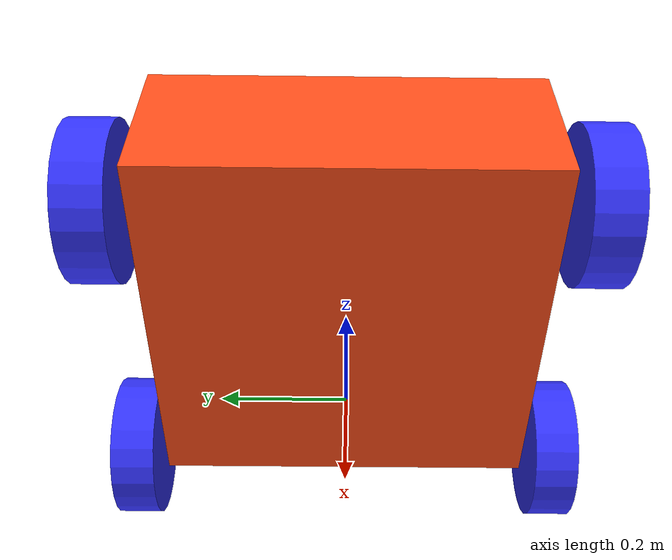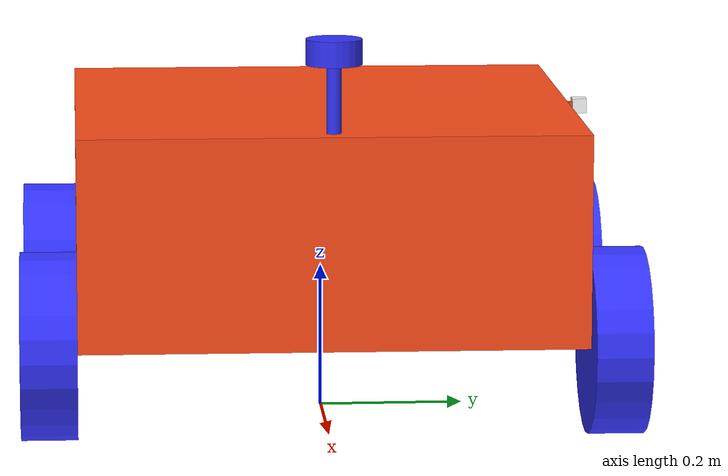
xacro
<?xml version="1.0"?>
<robot name='palmvision' xmlns:xacro="http://www.ros.org/wiki/xacro">
    <xacro:include filename='inertial_macros.xacro'/>

    <!-- COLORS -->

    <material name="white">
        <color rgba="1 1 1 1" />
    </material>

    <material name="orange">
        <color rgba="1 0.3 0.1 1"/>
    </material>

    <material name="blue">
        <color rgba="0.2 0.2 1 1"/>
    </material>

    <material name="black">
        <color rgba="0 0 0 1"/>
    </material>

    <material name="red">
        <color rgba="1 0 0 1"/>
    </material>

    <!-- CHASSIS PARAMS -->
    <xacro:property name='chassis_length' value='0.688'/>
    <xacro:property name='chassis_width' value='0.688'/>
    <xacro:property name='chassis_height' value='0.29'/>
    <xacro:property name='chassis_mass' value='30.0'/>

    <!-- WHEEL PARAMS -->
    <xacro:property name='wheel_radius' value='0.127'/>
    <xacro:property name='wheel_thickness' value='0.0762'/>
    <xacro:property name='wheel_mass' value='2.0'/>

    <xacro:property name='wheel_offset_x' value='${chassis_length/2 - wheel_radius/2}'/>
    <xacro:property name='wheel_offset_y' value='${chassis_width/2 + wheel_thickness/2}'/>
    <xacro:property name='wheel_offset_z' value='-${chassis_height/2}'/>

    <!-- EXTENDED ARM PARAMS -->
    <xacro:property name='arm_length' value='0.01'/>
    <xacro:property name='arm_height' value='0.01'/>
    <xacro:property name='arm_width' value='0.01'/>
    <xacro:property name='arm_mass' value='0.2'/>

    <xacro:property name='arm_offset_x' value='0'/>
    <xacro:property name='arm_offset_y' value='${chassis_width/2 + arm_width/2}'/>
    <xacro:property name='arm_offset_z' value='${chassis_height/2-arm_width}'/>

    <!-- LIDAR PARAMS -->
    <xacro:property name='lidar_radius' value='0.0379'/>
    <xacro:property name='lidar_thickness' value='0.0347'/>
    <xacro:property name='lidar_mass' value='0.2'/>
    <xacro:property name='lidar_offset_x' value='${chassis_length/2 - lidar_radius}'/>
    <xacro:property name='lidar_offset_y' value='0'/>
    <xacro:property name='lidar_offset_z' value='${chassis_height/2 + lidar_thickness/2}'/>

    <!-- CAMERA PARAMS -->
    <xacro:property name='camera_length' value='0.02'/>
    <xacro:property name='camera_width' value='0.02'/>
    <xacro:property name='camera_height' value='0.02'/>
    <xacro:property name='camera_mass' value='0.55'/>

    <xacro:property name='camera_offset_x' value='${arm_length/2 + camera_length/2}'/>
    <xacro:property name='camera_offset_y' value='0'/>
    <xacro:property name='camera_offset_z' value='0'/>

    <!-- base -->
    <link name="base_link"></link>

    <link name="base_footprint"></link>

    <joint name="base_footprint_joint" type="fixed">
        <origin xyz="0.0 0.0 0.0" rpy="0.0 0.0 0.0"/>
        <parent link="base_link"/>
        <child link="base_footprint"/>
    </joint>

    <link name="chassis_link">
        <xacro:inertial_box mass="${chassis_mass}" x="${chassis_length}" y="${chassis_width}" z="${chassis_height}">
            <origin xyz="0 0 0" rpy="0 0 0"/>
        </xacro:inertial_box>
        <visual>
            <origin xyz="0.0 0.0 0.0" rpy="0.0 0.0 0.0"/>
            <geometry>
                <box size="${chassis_length} ${chassis_width} ${chassis_height}"/>
            </geometry>
            <material name="orange"/>
        </visual>
        <collision>
            <origin xyz="0.0 0.0 0.0" rpy="0.0 0.0 0.0"/>
            <geometry>
                <box size="${chassis_length} ${chassis_width} ${chassis_height}"/>
            </geometry>
            <material name="orange"/>
        </collision>
    </link>

    <joint name="chassis_joint" type="fixed">
        <origin xyz="0.0 0.0 ${chassis_height}" rpy="0.0 0.0 0.0"/>
        <parent link="base_link"/>
        <child link="chassis_link"/>
    </joint>

    <link name="arm_link">
        <xacro:inertial_box mass="${arm_mass}" x="${arm_length}" y="${arm_width}" z="${arm_height}">
            <origin xyz="0 0 0" rpy="0 0 0"/>
        </xacro:inertial_box>
        <visual>
            <origin xyz="0.0 0.0 0.0" rpy="0.0 0.0 0.0"/>
            <geometry>
                <box size="${arm_length} ${arm_width} ${arm_height}"/>
            </geometry>
            <material name="orange"/>
        </visual>
        <collision>
            <origin xyz="0.0 0.0 0.0" rpy="0.0 0.0 0.0"/>
            <geometry>
                <box size="${arm_length} ${arm_width} ${arm_height}"/>
            </geometry>
            <material name="orange"/>
        </collision>
    </link>

    <joint name="arm_joint" type="revolute">
        <origin xyz="${arm_offset_x} ${arm_offset_y} ${arm_offset_z}" rpy="0.0 0.0 ${pi/2}"/>
        <parent link="chassis_link"/>
        <child link="arm_link"/>
        <axis xyz="0.0 1.0 0.0"/>
        <limit lower="${-pi/2}" upper="${pi/2}" effort="10.0" velocity="2.0"/>
    </joint>

    <link name="camera_link">
        <xacro:inertial_box mass="${camera_mass}" x="${camera_length}" y="${camera_width}" z="${camera_height}">
            <origin xyz="0 0 0" rpy="0 0 0"/>
        </xacro:inertial_box>
        <visual>
            <origin xyz="0.0 0.0 0.0" rpy="0.0 0.0 0.0"/>
            <geometry>
                <box size="${camera_length} ${camera_width} ${camera_height}"/>
            </geometry>
            <material name="white"/>
        </visual>
        <collision>
            <origin xyz="0.0 0.0 0.0" rpy="0.0 0.0 0.0"/>
            <geometry>
                <box size="${camera_length} ${camera_width} ${camera_height}"/>
            </geometry>
            <material name="white"/>
        </collision>
    </link>

    <joint name="camera_joint" type="fixed">
        <origin xyz="${camera_offset_x} ${camera_offset_y} ${camera_offset_z}" rpy="0.0 0.0 0.0"/>
        <parent link="arm_link"/>
        <child link="camera_link"/>
    </joint>

    <link name="support_link">
        <visual>
            <geometry>
                <cylinder radius="0.01" length="0.15"/>
            </geometry>
            <material name="blue"/>
        </visual>
        <collision>
            <geometry>
                <cylinder radius="0.01" length="0.15"/>
            </geometry>
            <material name="blue"/>
        </collision>
        <xacro:inertial_cylinder mass="0.2" length="0.01" radius="0.15">
            <origin xyz="0 0 0" rpy="0 0 0"/>
        </xacro:inertial_cylinder>
    </link>

    <joint name="support_joint" type="fixed">
        <origin xyz="${lidar_offset_x} ${lidar_offset_y} ${lidar_offset_z}" rpy="0.0 0.0 0.0"/>
        <parent link="chassis_link"/>
        <child link="support_link"/>
    </joint>

    <link name="lidar_link">
        <visual>
            <geometry>
                <cylinder radius="${lidar_radius}" length="${lidar_thickness}"/>
            </geometry>
            <material name="blue"/>
        </visual>
        <collision>
            <geometry>
                <cylinder radius="${lidar_radius}" length="${lidar_thickness}"/>
            </geometry>
            <material name="blue"/>
        </collision>
        <xacro:inertial_cylinder mass="${lidar_mass}" length="${lidar_thickness}" radius="${lidar_radius}">
            <origin xyz="0 0 0" rpy="0 0 0"/>
        </xacro:inertial_cylinder>
    </link>

    <link name="pseudo_lidar_link">
        <visual>
            <geometry>
                <cylinder radius="${lidar_radius}" length="${lidar_thickness}"/>
            </geometry>
            <material name="blue"/>
        </visual>
        <collision>
            <geometry>
                <cylinder radius="${lidar_radius}" length="${lidar_thickness}"/>
            </geometry>
            <material name="blue"/>
        </collision>
        <xacro:inertial_cylinder mass="${lidar_mass}" length="${lidar_thickness}" radius="${lidar_radius}">
            <origin xyz="0 0 0" rpy="0 0 0"/>
        </xacro:inertial_cylinder>
    </link>

    <joint name="lidar_joint" type="fixed">
        <origin xyz="0 0 ${0.15/2 + lidar_thickness/2}" rpy="0.0 0.0 0.0"/>
        <parent link="support_link"/>
        <child link="lidar_link"/>
    </joint>

    <joint name="pseudo_lidar_joint" type="fixed">
        <origin xyz="0 0 ${0.15/2 + lidar_thickness/2}" rpy="0.0 0.0 0.0"/>
        <parent link="support_link"/>
        <child link="pseudo_lidar_link"/>
    </joint>

    <link name="f_left_wheel_link">
        <visual>
            <geometry>
                <cylinder radius="${wheel_radius}" length="${wheel_thickness}"/>
            </geometry>
            <material name="blue"/>
        </visual>
        <collision>
            <geometry>
                <cylinder radius="${wheel_radius}" length="${wheel_thickness}"/>
            </geometry>
            <material name="blue"/>
        </collision>
        <xacro:inertial_cylinder mass="${wheel_mass}" length="${wheel_thickness}" radius="${wheel_radius}">
            <origin xyz="0 0 0" rpy="0 0 0"/>
        </xacro:inertial_cylinder>
    </link>

    <link name="f_right_wheel_link">
        <visual>
            <geometry>
                <cylinder radius="${wheel_radius}" length="${wheel_thickness}"/>
            </geometry>
            <material name="blue"/>
        </visual>
        <collision>
            <geometry>
                <cylinder radius="${wheel_radius}" length="${wheel_thickness}"/>
            </geometry>
            <material name="blue"/>
        </collision>
        <xacro:inertial_cylinder mass="${wheel_mass}" length="${wheel_thickness}" radius="${wheel_radius}">
            <origin xyz="0 0 0" rpy="0 0 0"/>
        </xacro:inertial_cylinder>
    </link>

    <link name="b_left_wheel_link">
        <visual>
            <geometry>
                <cylinder radius="${wheel_radius}" length="${wheel_thickness}"/>
            </geometry>
            <material name="blue"/>
        </visual>
        <collision>
            <geometry>
                <cylinder radius="${wheel_radius}" length="${wheel_thickness}"/>
            </geometry>
            <material name="blue"/>
        </collision>
        <xacro:inertial_cylinder mass="${wheel_mass}" length="${wheel_thickness}" radius="${wheel_radius}">
            <origin xyz="0 0 0" rpy="0 0 0"/>
        </xacro:inertial_cylinder>
    </link>

    <link name="b_right_wheel_link">
        <visual>
            <geometry>
                <cylinder radius="${wheel_radius}" length="${wheel_thickness}"/>
            </geometry>
            <material name="blue"/>
        </visual>
        <collision>
            <geometry>
                <cylinder radius="${wheel_radius}" length="${wheel_thickness}"/>
            </geometry>
            <material name="blue"/>
        </collision>
        <xacro:inertial_cylinder mass="${wheel_mass}" length="${wheel_thickness}" radius="${wheel_radius}">
            <origin xyz="0 0 0" rpy="0 0 0"/>
        </xacro:inertial_cylinder>
    </link>

    <joint name="f_left_wheel_joint" type="continuous">
        <parent link="chassis_link"/>
        <child link="f_left_wheel_link"/>
        <origin xyz="${wheel_offset_x} ${wheel_offset_y} ${wheel_offset_z}" rpy="-${pi/2} 0 0" />
        <axis xyz="0 0 1"/>
    </joint>

    <joint name="f_right_wheel_joint" type="continuous">
        <parent link="chassis_link"/>
        <child link="f_right_wheel_link"/>
        <origin xyz="${wheel_offset_x} -${wheel_offset_y} ${wheel_offset_z}" rpy="${pi/2} 0 0" />
        <axis xyz="0 0 -1"/>
    </joint>

    <joint name="b_left_wheel_joint" type="continuous">
        <parent link="chassis_link"/>
        <child link="b_left_wheel_link"/>
        <origin xyz="-${wheel_offset_x} ${wheel_offset_y} ${wheel_offset_z}" rpy="-${pi/2} 0 0" />
        <axis xyz="0 0 1"/>
    </joint>

    <joint name="b_right_wheel_joint" type="continuous">
        <parent link="chassis_link"/>
        <child link="b_right_wheel_link"/>
        <origin xyz="-${wheel_offset_x} -${wheel_offset_y} ${wheel_offset_z}" rpy="${pi/2} 0 0" />
        <axis xyz="0 0 -1"/>
    </joint>
</robot>
